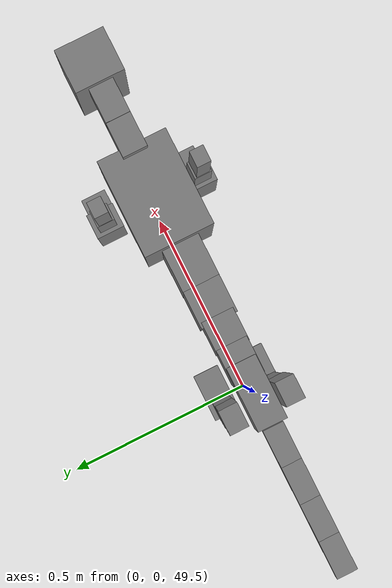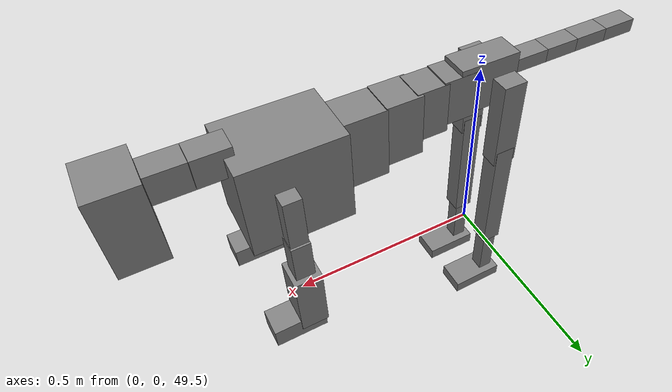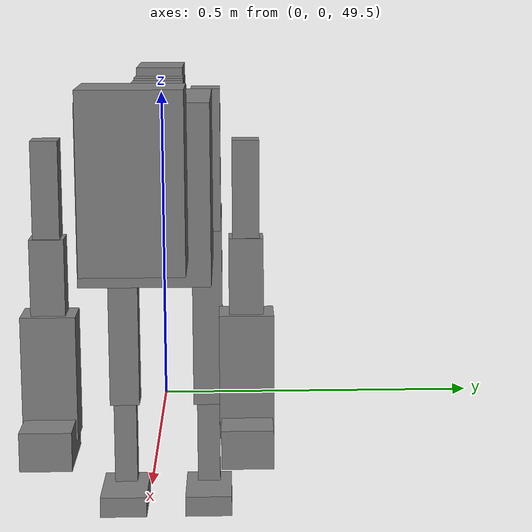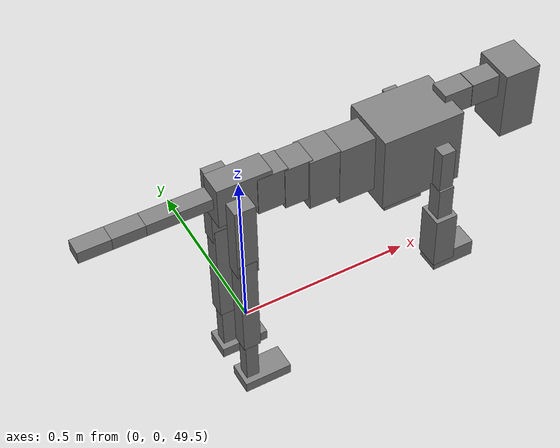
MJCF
<mujoco model="dog">

    <default>
        <joint armature="0.02" stiffness="1" damping="0.2" limited="true"/>
        <geom condim="3" friction="1 0.05 0.05" margin="0.01"/>
        <motor ctrllimited="true" ctrlrange="-1.0 1.0" forcelimited="true" gear="50"/>
    </default>

    <compiler inertiafromgeom="true" angle="radian"/>

    <option timestep="0.016" iterations="50" tolerance="1e-10" solver="Newton" jacobian="dense" cone="pyramidal"/>

    <size nconmax="20000" njmax="60000" nstack="5000000"/>
    <visual>
        <map force="0.1" zfar="30"/>
        <rgba haze="0.15 0.25 0.35 1"/>
        <quality shadowsize="2048"/>
        <global offwidth="800" offheight="800"/>
    </visual>

    <asset>
        <texture type="skybox" builtin="gradient" rgb1="0.3 0.5 0.7" rgb2="0 0 0" width="512" height="512"/>
        <texture name="texplane" type="2d" builtin="checker" rgb1=".2 .3 .4" rgb2=".1 0.15 0.2" width="512" height="512"
                 mark="cross" markrgb=".8 .8 .8"/>
        <texture name="texgeom" type="cube" builtin="flat" mark="cross" width="127" height="1278" rgb1="0.8 0.6 0.4"
                 rgb2="0.8 0.6 0.4" markrgb="1 1 1" random="0.01"/>

        <material name="matplane" reflectance="0.3" texture="texplane" texrepeat="1 1" texuniform="true"/>
        <material name="matgeom" texture="texgeom" texuniform="true" rgba="0.8 0.6 .4 1"/>
    </asset>

    <worldbody>
        <geom name="floor" pos="0 0 0" size="0 0 .25" type="plane" material="matplane" condim="3"/>

        <light directional="false" diffuse=".2 .2 .2" specular="0 0 0" pos="0 0 5" dir="0 0 -1" castshadow="false"/>
        <light mode="targetbodycom" target="torso" directional="false" diffuse=".8 .8 .8" specular="0.3 0.3 0.3"
               pos="0 0 4.0" dir="0 0 -1"/>

        <body name="root" pos="0 0 50">
            <freejoint name="root_1"/>
            <geom type="box" pos="0 0 -0.02" size="0.0774  0.0358  0.063" density="2030"/>

            <body name="spine1" pos="0.054 0 0">
                <joint name="spine1_y" axis="0 1 0" range="0 0.7" limited="true"/>
                <geom type="box" pos="0.02375 0 -0.03" size="0.04375  0.0375  0.05985" density="2030"/>

                <body name="spine2" pos="0.0612 0 0">
                    <joint name="spine2_y" axis="0 1 0" range="-0.15 0.15" limited="true"/>
                    <geom type="box" pos="0.03555  0  -0.04" size="0.04055  0.039  0.06615" density="2030"/>

                    <body name="spine3" pos="0.0730 0 0">
                        <joint name="spine3_y" axis="0 1 0" range="-0.15 0.15" limited="true"/>
                        <geom type="box" pos="0.03555  0  -0.057" size="0.04555  0.0445  0.081" density="2030"/>

                        <body name="spine4" pos="0.0780 0 0">
                            <joint name="spine4_y" axis="0 1 0" range="-0.15 0.15" limited="true"/>
                            <geom type="box" pos="0.05265  0  -0.07" size="0.05265  0.045  0.09135" density="2030"/>

                            <body name="torso" pos="0.1082 0 0">
                                <joint name="torso_y" axis="0 1 0" range="-0.15 0.15" limited="true"/>
                                <geom type="box" pos="0.11925  0  -0.085" size="0.11925  0.085  0.11745"
                                      density="2030"/>

                                <body name="neck1" pos="0.2160  0   0.0180">
                                    <joint name="neck1_y" axis="0 1 0" range="-1.2  -1" limited="true"/>
                                    <geom type="box" pos="0.0423  0  0" size="0.0423  0.03  0.036" density="2325"/>

                                    <body name="neck2" pos="0.0853  0  0">
                                        <joint name="neck2_y" axis="0 1 0" range="0.1  0" limited="true"/>
                                        <geom type="box" pos="0.0423  0  0" size="0.0423  0.03  0.036" density="2325"/>

                                        <body name="head" pos="0.0853  0  0">
                                            <joint name="head_y" axis="0 1 0" range="-0.3  -0.2" limited="true"/>
                                            <geom type="box" pos="0.0531  0  -0.055" size="0.0531  0.06  0.1044"
                                                  density="4030"/>

                                        </body>
                                    </body>
                                </body>

                                <body name="front_shoulder" pos="0.156  0   -0.0480">
                                    <joint name="front_shoulder_y" axis="0 1 0" range="-1 1.5" limited="true"/>
                                    <geom type="box" pos="0 0.13 -0.0510" size="0.0207  0.0177  0.0776" density="1158"/>
                                    <geom type="box" pos="0 -0.13 -0.0510" size="0.0207  0.0177  0.0776"
                                          density="1158"/>

                                    <body name="front_elbow" pos="0  0  -0.1019">
                                        <joint name="front_elbow_y" axis="0 1 0" range="-2 0" limited="true"/>
                                        <geom type="box" pos="0 0.13 -0.0573" size="0.0222  0.0227  0.0573"
                                              density="1081"/>
                                        <geom type="box" pos="0 -0.13 -0.0573" size="0.0222  0.0227  0.0573"
                                              density="1081"/>

                                        <body name="front_wrist" pos="0  0  -0.1146">
                                            <joint name="front_wrist_y" axis="0 1 0" range="-0.2 0" limited="true"/>
                                            <geom type="box" pos="0 0.13 -0.0699" size="0.0325  0.0361  0.0831"
                                                  density="1664"/>
                                            <geom type="box" pos="0 -0.13 -0.0699" size="0.0325  0.0361  0.0831"
                                                  density="1664"/>

                                            <body name="front_finger_end" pos="0  0  -0.1398">
                                                <joint name="front_finger_y" axis="0 1 0" range="-0.4 1"
                                                       limited="true"/>
                                                <geom type="box" pos="0.0339  0.13  -0.0106"
                                                      size="0.0621  0.0339  0.0256" density="1515"/>
                                                <geom type="box" pos="0.0339  -0.13  -0.0106"
                                                      size="0.0621  0.0339  0.0256" density="1515"/>

                                            </body>

                                        </body>
                                    </body>
                                </body>

                            </body>
                        </body>
                    </body>
                </body>
            </body>

            <body name="back_hip" pos="-0.03 0 -0.018">
                <joint name="back_hip_y" axis="0 1 0" range="-1.5 0.3" limited="true"/>
                <geom type="box" pos="0 0.07 -0.0940" size="0.0300  0.0235  0.1168" density="1154"/>
                <geom type="box" pos="0 -0.07 -0.0940" size="0.0300  0.0235  0.1168" density="1154"/>

                <body name="back_knee" pos="0  0  -0.1880">
                    <joint name="back_knee_y" axis="0 1 0" range="0 2.8" limited="true"/>
                    <geom type="box" pos="0 0.07 -0.1512" size="0.0250  0.0246  0.1667" density="1227"/>
                    <geom type="box" pos="0 -0.07 -0.1512" size="0.0250  0.0246  0.1667" density="1227"/>

                    <body name="back_ankle" pos="0  0  -0.3024">
                        <joint name="back_ankle_y" axis="0 1 0" range="-2.2 0" limited="true"/>
                        <geom type="box" pos="0 0.07 -0.0826" size="0.0188  0.0188  0.0938" density="1284"/>
                        <geom type="box" pos="0 -0.07 -0.0826" size="0.0188  0.0188  0.0938" density="1284"/>

                        <body name="back_toe_end" pos="0  0  -0.1652">
                            <joint name="back_toe_y" axis="0 1 0" range="-0.4 1" limited="true"/>
                            <geom type="box" pos="0.0381  0.07  -0.0015" size="0.0699  0.0381  0.0165" density="1515"/>
                            <geom type="box" pos="0.0381  -0.07  -0.0015" size="0.0699  0.0381  0.0165" density="1515"/>

                        </body>
                    </body>
                </body>
            </body>

            <body name="tail1" pos="-0.074 0 -0.006">
                <joint name="tail1_y" axis="0 1 0" range="-0.2 0.2" limited="true"/>
                <geom type="box" pos="-0.0536  0  0" size="0.045  0.025  0.0175" density="1587"/>

                <body name="tail2" pos="-0.09 0 0">
                    <joint name="tail2_y" axis="0 1 0" range="-0.2 0.2" limited="true"/>
                    <geom type="box" pos="-0.0536  0  0" size="0.045  0.025  0.0175" density="1587"/>

                    <body name="tail3" pos="-0.09 0 0">
                        <joint name="tail3_y" axis="0 1 0" range="-0.2 0.2" limited="true"/>
                        <geom type="box" pos="-0.0536  0  0" size="0.045  0.025  0.0175" density="1587"/>

                        <body name="tail4" pos="-0.09 0 0">
                            <joint name="tail4_y" axis="0 1 0" range="-0.2 0.2" limited="true"/>
                            <geom type="box" pos="-0.0536  0  0" size="0.045  0.025  0.0175" density="1587"/>

                        </body>
                    </body>
                </body>
            </body>
        </body>
    </worldbody>

    <actuator>
        <motor joint="spine1_y" forcerange="-150 150     "/>
        <motor joint="spine2_y" forcerange="-150 150     "/>
        <motor joint="spine3_y" forcerange="-150 150     "/>
        <motor joint="spine4_y" forcerange="-150 150     "/>
        <motor joint="torso_y" forcerange="-150 150     "/>
        <motor joint="neck1_y" forcerange="-100 100       "/>
        <motor joint="neck2_y" forcerange="-100 100       "/>
        <motor joint="head_y" forcerange="-150 150       "/>
        <motor joint="front_shoulder_y" forcerange="-104.62 113.55"/>
        <motor joint="front_elbow_y" forcerange="-146.56 118.20"/>
        <motor joint="front_wrist_y" forcerange="-145.22 143.43"/>
        <motor joint="front_finger_y" forcerange="-51.02 89.76"/>
        <motor joint="back_hip_y" forcerange="-265.54 247.71"/>
        <motor joint="back_knee_y" forcerange="-255.79 302.11"/>
        <motor joint="back_angle_y" forcerange="-77.72 123.13"/>
        <motor joint="back_toe_y" forcerange="-99.25 125.68"/>
        <motor joint="tail1_y" forcerange="-50 50     "/>
        <motor joint="tail2_y" forcerange="-50 50     "/>
        <motor joint="tail3_y" forcerange="-50 50     "/>
        <motor joint="tail4_y" forcerange="-50 50     "/>
    </actuator>
</mujoco>
